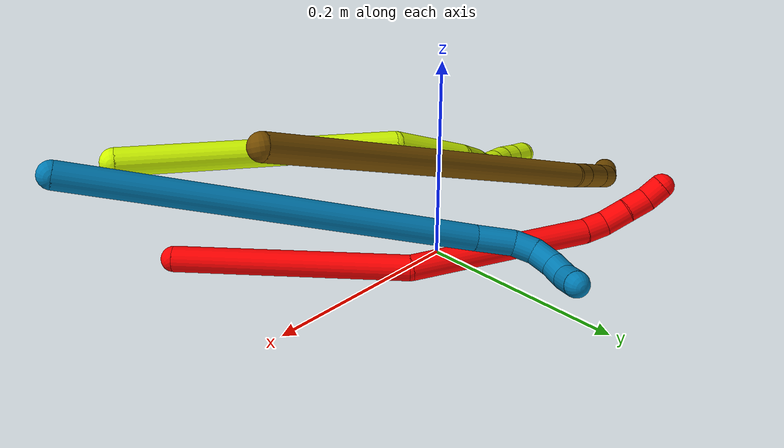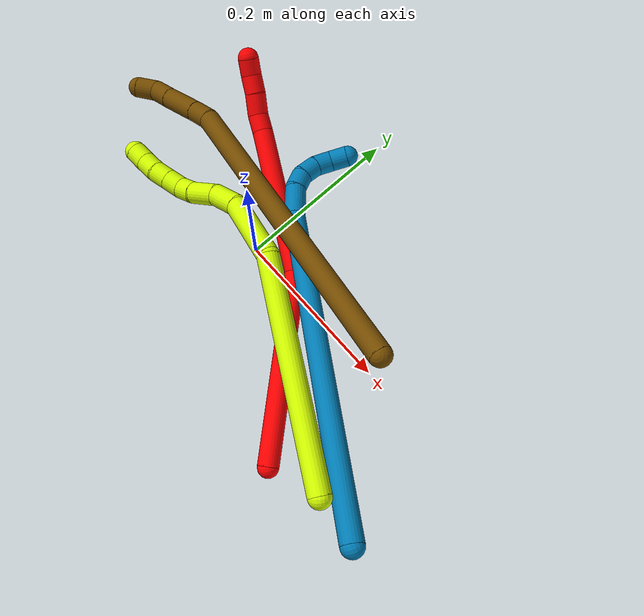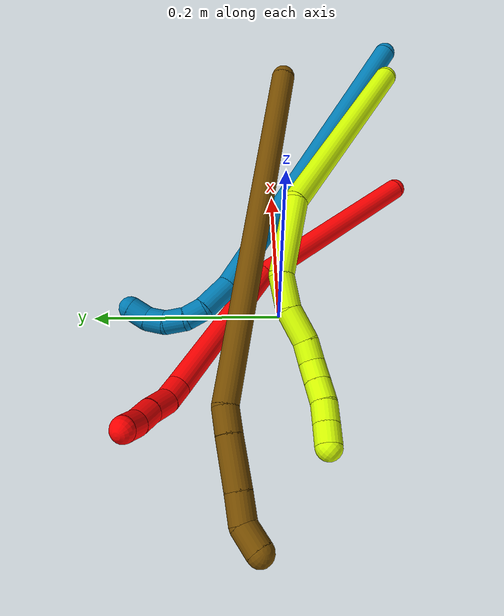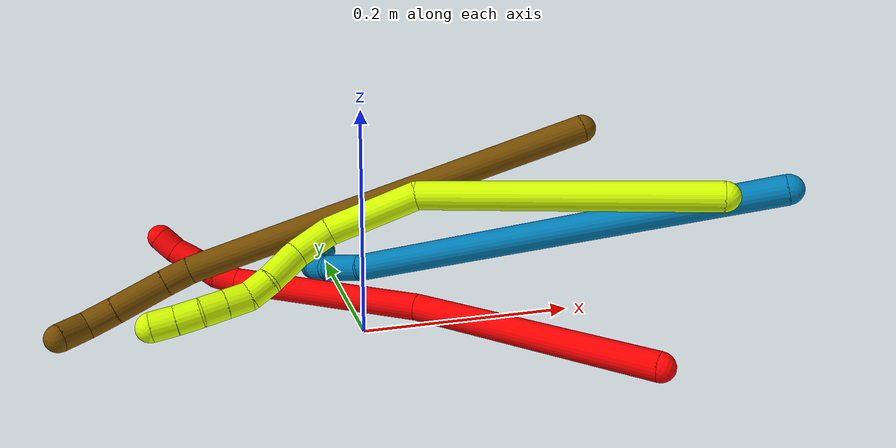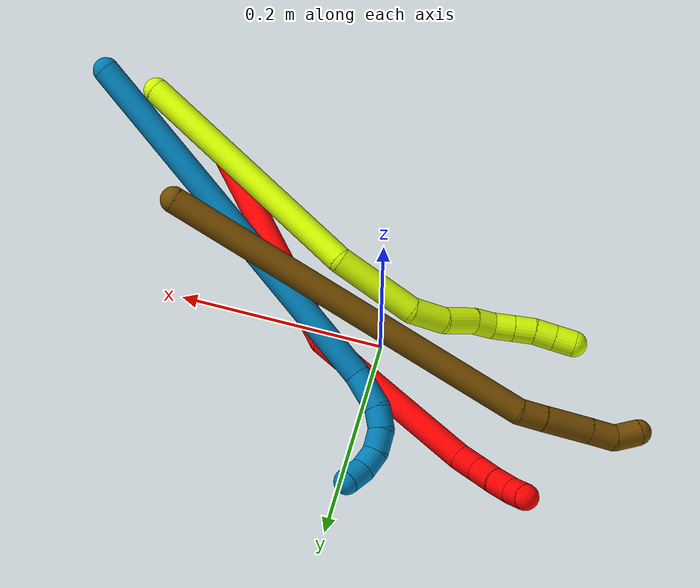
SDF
<sdf version="1.7">
 <world name="default">
  <model name="photoneo_s_sensor">
   <static>1</static>
   <pose>0 0 2 1.57079 1.57079 3.14159</pose>
   <link name="link">
    <inertial><mass>0.1</mass></inertial>
    <sensor name="sensor" type="depth">
     <update_rate>30</update_rate>
     <camera>
      <horizontal_fov>1.22</horizontal_fov>
      <image><width>1920</width><height>1200</height><format>B8G8R8</format></image>
      <clip><near>0.1</near><far>4</far></clip>
      <depth_camera><output>points</output></depth_camera>
     </camera>
     <plugin name="camera_plugin" filename="libgazebo_ros_depth_camera.so">
      <baseline>0.2</baseline>
      <alwaysOn>1</alwaysOn>
      <updateRate>0.0</updateRate>
      <cameraName>camera_ir</cameraName>
      <imageTopicName>/camera/color/image_raw</imageTopicName>
      <cameraInfoTopicName>/camera/color/camera_info</cameraInfoTopicName>
      <depthImageTopicName>/camera/depth/image_raw</depthImageTopicName>
      <depthImageCameraInfoTopicName>/camera/depth/camera_info</depthImageCameraInfoTopicName>
      <pointCloudTopicName>/camera/depth/points</pointCloudTopicName>
      <frameName>fr_optical</frameName>
      <pointCloudCutoff>0.1</pointCloudCutoff>
      <pointCloudCutoffMax>2.0</pointCloudCutoffMax>
      <distortionK1>0</distortionK1>
      <distortionK2>0</distortionK2>
      <distortionK3>0</distortionK3>
      <distortionT1>0</distortionT1>
      <distortionT2>0</distortionT2>
      <CxPrime>0</CxPrime>
      <Cx>0</Cx>
      <Cy>0</Cy>
      <focalLength>0</focalLength>
      <hackBaseline>0</hackBaseline>
     </plugin>
    </sensor>
   </link>
  </model>
  <model name="bin">
   <static>1</static>
   <link name="bottom">
    <collision name="collision-bottom">
     <pose>0 0 -0.01 0 -0 0</pose>
     <geometry><box><size>0.8 0.6 0.02</size></box></geometry>
     <surface>
      <friction><ode><mu>100</mu><mu2>100</mu2></ode></friction>
      <contact><collide_bitmask>65535</collide_bitmask></contact>
     </surface>
    </collision>
   </link>
   <link name="west_wall">
    <collision name="collision-west_wall">
     <pose>-0.41 0 0.1 0 -0 0</pose>
     <geometry><box><size>0.02 0.6 0.2</size></box></geometry>
     <surface>
      <friction><ode><mu>100</mu><mu2>100</mu2></ode></friction>
      <contact><collide_bitmask>65535</collide_bitmask></contact>
     </surface>
    </collision>
   </link>
   <link name="east_wall">
    <collision name="collision-east_wall">
     <pose>0.41 0 0.1 0 -0 0</pose>
     <geometry><box><size>0.02 0.6 0.2</size></box></geometry>
     <surface>
      <friction><ode><mu>100</mu><mu2>100</mu2></ode></friction>
      <contact><collide_bitmask>65535</collide_bitmask></contact>
     </surface>
    </collision>
   </link>
   <link name="south_wall">
    <collision name="collision-south_wall">
     <pose>0 -0.31 0.1 0 -0 0</pose>
     <geometry><box><size>0.8 0.02 0.2</size></box></geometry>
     <surface>
      <friction><ode><mu>100</mu><mu2>100</mu2></ode></friction>
      <contact><collide_bitmask>65535</collide_bitmask></contact>
     </surface>
    </collision>
   </link>
   <link name="north_wall">
    <collision name="collision-north_wall">
     <pose>0 0.31 0.1 0 -0 0</pose>
     <geometry><box><size>0.8 0.02 0.2</size></box></geometry>
     <surface>
      <friction><ode><mu>100</mu><mu2>100</mu2></ode></friction>
      <contact><collide_bitmask>65535</collide_bitmask></contact>
     </surface>
    </collision>
   </link>
  </model>
  <model name="2">
   <static>0</static>
   <link name="2">
    <collision name="collision-cylinder-e_1_1_4">
     <pose>-0.035352 0.055876 0.092912 -0.541437 -0.315201 0.088153</pose>
     <geometry><cylinder><radius>0.0125</radius><length>0.228075</length></cylinder></geometry>
     <surface>
      <friction><ode><mu>1.16</mu><mu2>1.16</mu2><slip1>0</slip1><slip2>0</slip2></ode></friction>
      <contact><ode><kp>1e+06</kp><kd>1</kd><max_vel>0</max_vel><min_depth>0.001</min_depth></ode></contact>
     </surface>
    </collision>
    <visual name="visual-cylinder-e_1_1_4">
     <pose>-0.035352 0.055876 0.092912 -0.541437 -0.315201 0.088153</pose>
     <geometry><cylinder><radius>0.0125</radius><length>0.228075</length></cylinder></geometry>
     <material><ambient>1 0 0 1</ambient></material>
    </visual>
    <collision name="collision-cylinder-e_2_4_5">
     <pose>-0.102377 0.12525 0.269541 -0.15986 -0.357457 0.028939</pose>
     <geometry><cylinder><radius>0.0125</radius><length>0.18104</length></cylinder></geometry>
     <surface>
      <friction><ode><mu>1.16</mu><mu2>1.16</mu2><slip1>0</slip1><slip2>0</slip2></ode></friction>
      <contact><ode><kp>1e+06</kp><kd>1</kd><max_vel>0</max_vel><min_depth>0.001</min_depth></ode></contact>
     </surface>
    </collision>
    <visual name="visual-cylinder-e_2_4_5">
     <pose>-0.102377 0.12525 0.269541 -0.15986 -0.357457 0.028939</pose>
     <geometry><cylinder><radius>0.0125</radius><length>0.18104</length></cylinder></geometry>
     <material><ambient>1 0 0 1</ambient></material>
    </visual>
    <collision name="collision-cylinder-e_3_5_6">
     <pose>-0.136437 0.139541 0.363942 -0.074064 -0.219268 0.008156</pose>
     <geometry><cylinder><radius>0.0125</radius><length>0.021952</length></cylinder></geometry>
     <surface>
      <friction><ode><mu>1.16</mu><mu2>1.16</mu2><slip1>0</slip1><slip2>0</slip2></ode></friction>
      <contact><ode><kp>1e+06</kp><kd>1</kd><max_vel>0</max_vel><min_depth>0.001</min_depth></ode></contact>
     </surface>
    </collision>
    <visual name="visual-cylinder-e_3_5_6">
     <pose>-0.136437 0.139541 0.363942 -0.074064 -0.219268 0.008156</pose>
     <geometry><cylinder><radius>0.0125</radius><length>0.021952</length></cylinder></geometry>
     <material><ambient>1 0 0 1</ambient></material>
    </visual>
    <collision name="collision-cylinder-e_4_6_7">
     <pose>-0.137622 0.142164 0.387508 -0.141119 0.09213 -0.006516</pose>
     <geometry><cylinder><radius>0.0125</radius><length>0.026134</length></cylinder></geometry>
     <surface>
      <friction><ode><mu>1.16</mu><mu2>1.16</mu2><slip1>0</slip1><slip2>0</slip2></ode></friction>
      <contact><ode><kp>1e+06</kp><kd>1</kd><max_vel>0</max_vel><min_depth>0.001</min_depth></ode></contact>
     </surface>
    </collision>
    <visual name="visual-cylinder-e_4_6_7">
     <pose>-0.137622 0.142164 0.387508 -0.141119 0.09213 -0.006516</pose>
     <geometry><cylinder><radius>0.0125</radius><length>0.026134</length></cylinder></geometry>
     <material><ambient>1 0 0 1</ambient></material>
    </visual>
    <collision name="collision-cylinder-e_5_7_8">
     <pose>-0.13646 0.144799 0.41167 -0.07125 -0.00356 0.000127</pose>
     <geometry><cylinder><radius>0.0125</radius><length>0.022616</length></cylinder></geometry>
     <surface>
      <friction><ode><mu>1.16</mu><mu2>1.16</mu2><slip1>0</slip1><slip2>0</slip2></ode></friction>
      <contact><ode><kp>1e+06</kp><kd>1</kd><max_vel>0</max_vel><min_depth>0.001</min_depth></ode></contact>
     </surface>
    </collision>
    <visual name="visual-cylinder-e_5_7_8">
     <pose>-0.13646 0.144799 0.41167 -0.07125 -0.00356 0.000127</pose>
     <geometry><cylinder><radius>0.0125</radius><length>0.022616</length></cylinder></geometry>
     <material><ambient>1 0 0 1</ambient></material>
    </visual>
    <collision name="collision-cylinder-e_6_8_2">
     <pose>-0.134067 0.146078 0.432731 -0.048444 0.243562 -0.00593</pose>
     <geometry><cylinder><radius>0.0125</radius><length>0.020182</length></cylinder></geometry>
     <surface>
      <friction><ode><mu>1.16</mu><mu2>1.16</mu2><slip1>0</slip1><slip2>0</slip2></ode></friction>
      <contact><ode><kp>1e+06</kp><kd>1</kd><max_vel>0</max_vel><min_depth>0.001</min_depth></ode></contact>
     </surface>
    </collision>
    <visual name="visual-cylinder-e_6_8_2">
     <pose>-0.134067 0.146078 0.432731 -0.048444 0.243562 -0.00593</pose>
     <geometry><cylinder><radius>0.0125</radius><length>0.020182</length></cylinder></geometry>
     <material><ambient>1 0 0 1</ambient></material>
    </visual>
    <collision name="collision-sphere-2">
     <pose>-0.131633 0.146552 0.442513 0 -0 0</pose>
     <geometry><sphere><radius>0.0125</radius></sphere></geometry>
     <surface>
      <friction><ode><mu>1.16</mu><mu2>1.16</mu2><slip1>0</slip1><slip2>0</slip2></ode></friction>
      <contact><ode><kp>1e+06</kp><kd>1</kd><max_vel>0</max_vel><min_depth>0.001</min_depth></ode></contact>
     </surface>
    </collision>
    <visual name="visual-sphere-2">
     <pose>-0.131633 0.146552 0.442513 0 -0 0</pose>
     <geometry><sphere><radius>0.0125</radius></sphere></geometry>
     <material><ambient>1 0 0 1</ambient></material>
    </visual>
    <collision name="collision-sphere-4">
     <pose>-0.070705 0.111752 0.185824 0 -0 0</pose>
     <geometry><sphere><radius>0.0125</radius></sphere></geometry>
     <surface>
      <friction><ode><mu>1.16</mu><mu2>1.16</mu2><slip1>0</slip1><slip2>0</slip2></ode></friction>
      <contact><ode><kp>1e+06</kp><kd>1</kd><max_vel>0</max_vel><min_depth>0.001</min_depth></ode></contact>
     </surface>
    </collision>
    <visual name="visual-sphere-4">
     <pose>-0.070705 0.111752 0.185824 0 -0 0</pose>
     <geometry><sphere><radius>0.0125</radius></sphere></geometry>
     <material><ambient>1 0 0 1</ambient></material>
    </visual>
    <collision name="collision-sphere-1">
     <geometry><sphere><radius>0.0125</radius></sphere></geometry>
     <surface>
      <friction><ode><mu>1.16</mu><mu2>1.16</mu2><slip1>0</slip1><slip2>0</slip2></ode></friction>
      <contact><ode><kp>1e+06</kp><kd>1</kd><max_vel>0</max_vel><min_depth>0.001</min_depth></ode></contact>
     </surface>
    </collision>
    <visual name="visual-sphere-1">
     <geometry><sphere><radius>0.0125</radius></sphere></geometry>
     <material><ambient>1 0 0 1</ambient></material>
    </visual>
    <collision name="collision-sphere-8">
     <pose>-0.136501 0.145604 0.422949 0 -0 0</pose>
     <geometry><sphere><radius>0.0125</radius></sphere></geometry>
     <surface>
      <friction><ode><mu>1.16</mu><mu2>1.16</mu2><slip1>0</slip1><slip2>0</slip2></ode></friction>
      <contact><ode><kp>1e+06</kp><kd>1</kd><max_vel>0</max_vel><min_depth>0.001</min_depth></ode></contact>
     </surface>
    </collision>
    <visual name="visual-sphere-8">
     <pose>-0.136501 0.145604 0.422949 0 -0 0</pose>
     <geometry><sphere><radius>0.0125</radius></sphere></geometry>
     <material><ambient>1 0 0 1</ambient></material>
    </visual>
    <collision name="collision-sphere-5">
     <pose>-0.134049 0.138748 0.353258 0 -0 0</pose>
     <geometry><sphere><radius>0.0125</radius></sphere></geometry>
     <surface>
      <friction><ode><mu>1.16</mu><mu2>1.16</mu2><slip1>0</slip1><slip2>0</slip2></ode></friction>
      <contact><ode><kp>1e+06</kp><kd>1</kd><max_vel>0</max_vel><min_depth>0.001</min_depth></ode></contact>
     </surface>
    </collision>
    <visual name="visual-sphere-5">
     <pose>-0.134049 0.138748 0.353258 0 -0 0</pose>
     <geometry><sphere><radius>0.0125</radius></sphere></geometry>
     <material><ambient>1 0 0 1</ambient></material>
    </visual>
    <collision name="collision-sphere-6">
     <pose>-0.138824 0.140333 0.374626 0 -0 0</pose>
     <geometry><sphere><radius>0.0125</radius></sphere></geometry>
     <surface>
      <friction><ode><mu>1.16</mu><mu2>1.16</mu2><slip1>0</slip1><slip2>0</slip2></ode></friction>
      <contact><ode><kp>1e+06</kp><kd>1</kd><max_vel>0</max_vel><min_depth>0.001</min_depth></ode></contact>
     </surface>
    </collision>
    <visual name="visual-sphere-6">
     <pose>-0.138824 0.140333 0.374626 0 -0 0</pose>
     <geometry><sphere><radius>0.0125</radius></sphere></geometry>
     <material><ambient>1 0 0 1</ambient></material>
    </visual>
    <collision name="collision-sphere-7">
     <pose>-0.13642 0.143994 0.40039 0 -0 0</pose>
     <geometry><sphere><radius>0.0125</radius></sphere></geometry>
     <surface>
      <friction><ode><mu>1.16</mu><mu2>1.16</mu2><slip1>0</slip1><slip2>0</slip2></ode></friction>
      <contact><ode><kp>1e+06</kp><kd>1</kd><max_vel>0</max_vel><min_depth>0.001</min_depth></ode></contact>
     </surface>
    </collision>
    <visual name="visual-sphere-7">
     <pose>-0.13642 0.143994 0.40039 0 -0 0</pose>
     <geometry><sphere><radius>0.0125</radius></sphere></geometry>
     <material><ambient>1 0 0 1</ambient></material>
    </visual>
    <inertial>
     <pose>-0.077962 0.096841 0.212298 0 -0 0</pose>
     <mass>0.5</mass>
     <inertia>
      <ixx>0.001509</ixx>
      <ixy>0</ixy>
      <ixz>0</ixz>
      <iyy>0.001477</iyy>
      <iyz>0</iyz>
      <izz>-4.5e-05</izz>
     </inertia>
    </inertial>
   </link>
   <pose>0.203122 -0.157958 0.012211 -0.340158 -1.10175 -0.036153</pose>
  </model>
  <model name="9">
   <static>0</static>
   <link name="9">
    <collision name="collision-cylinder-e_1_1_4">
     <pose>-0.16604 0.08528 0.028031 -1.25322 -1.07517 0.814852</pose>
     <geometry><cylinder><radius>0.0125</radius><length>0.377506</length></cylinder></geometry>
     <surface>
      <friction><ode><mu>1.16</mu><mu2>1.16</mu2><slip1>0</slip1><slip2>0</slip2></ode></friction>
      <contact><ode><kp>1e+06</kp><kd>1</kd><max_vel>0</max_vel><min_depth>0.001</min_depth></ode></contact>
     </surface>
    </collision>
    <visual name="visual-cylinder-e_1_1_4">
     <pose>-0.16604 0.08528 0.028031 -1.25322 -1.07517 0.814852</pose>
     <geometry><cylinder><radius>0.0125</radius><length>0.377506</length></cylinder></geometry>
     <material><ambient>0 0.490196 0.709804 1</ambient></material>
    </visual>
    <collision name="collision-cylinder-e_2_4_5">
     <pose>-0.348293 0.177441 0.062442 -0.823299 -1.04613 0.493261</pose>
     <geometry><cylinder><radius>0.0125</radius><length>0.037466</length></cylinder></geometry>
     <surface>
      <friction><ode><mu>1.16</mu><mu2>1.16</mu2><slip1>0</slip1><slip2>0</slip2></ode></friction>
      <contact><ode><kp>1e+06</kp><kd>1</kd><max_vel>0</max_vel><min_depth>0.001</min_depth></ode></contact>
     </surface>
    </collision>
    <visual name="visual-cylinder-e_2_4_5">
     <pose>-0.348293 0.177441 0.062442 -0.823299 -1.04613 0.493261</pose>
     <geometry><cylinder><radius>0.0125</radius><length>0.037466</length></cylinder></geometry>
     <material><ambient>0 0.490196 0.709804 1</ambient></material>
    </visual>
    <collision name="collision-cylinder-e_3_5_6">
     <pose>-0.371329 0.189008 0.075273 -0.628001 -0.707754 0.238798</pose>
     <geometry><cylinder><radius>0.0125</radius><length>0.020989</length></cylinder></geometry>
     <surface>
      <friction><ode><mu>1.16</mu><mu2>1.16</mu2><slip1>0</slip1><slip2>0</slip2></ode></friction>
      <contact><ode><kp>1e+06</kp><kd>1</kd><max_vel>0</max_vel><min_depth>0.001</min_depth></ode></contact>
     </surface>
    </collision>
    <visual name="visual-cylinder-e_3_5_6">
     <pose>-0.371329 0.189008 0.075273 -0.628001 -0.707754 0.238798</pose>
     <geometry><cylinder><radius>0.0125</radius><length>0.020989</length></cylinder></geometry>
     <material><ambient>0 0.490196 0.709804 1</ambient></material>
    </visual>
    <collision name="collision-cylinder-e_4_6_7">
     <pose>-0.381345 0.198454 0.091089 -0.470435 -0.295114 0.071213</pose>
     <geometry><cylinder><radius>0.0125</radius><length>0.021957</length></cylinder></geometry>
     <surface>
      <friction><ode><mu>1.16</mu><mu2>1.16</mu2><slip1>0</slip1><slip2>0</slip2></ode></friction>
      <contact><ode><kp>1e+06</kp><kd>1</kd><max_vel>0</max_vel><min_depth>0.001</min_depth></ode></contact>
     </surface>
    </collision>
    <visual name="visual-cylinder-e_4_6_7">
     <pose>-0.381345 0.198454 0.091089 -0.470435 -0.295114 0.071213</pose>
     <geometry><cylinder><radius>0.0125</radius><length>0.021957</length></cylinder></geometry>
     <material><ambient>0 0.490196 0.709804 1</ambient></material>
    </visual>
    <collision name="collision-cylinder-e_5_7_8">
     <pose>-0.384425 0.205745 0.110434 -0.248223 0.011013 -0.001374</pose>
     <geometry><cylinder><radius>0.0125</radius><length>0.020597</length></cylinder></geometry>
     <surface>
      <friction><ode><mu>1.16</mu><mu2>1.16</mu2><slip1>0</slip1><slip2>0</slip2></ode></friction>
      <contact><ode><kp>1e+06</kp><kd>1</kd><max_vel>0</max_vel><min_depth>0.001</min_depth></ode></contact>
     </surface>
    </collision>
    <visual name="visual-cylinder-e_5_7_8">
     <pose>-0.384425 0.205745 0.110434 -0.248223 0.011013 -0.001374</pose>
     <geometry><cylinder><radius>0.0125</radius><length>0.020597</length></cylinder></geometry>
     <material><ambient>0 0.490196 0.709804 1</ambient></material>
    </visual>
    <collision name="collision-cylinder-e_6_8_2">
     <pose>-0.383145 0.206746 0.130985 0.143694 0.108732 0.007833</pose>
     <geometry><cylinder><radius>0.0125</radius><length>0.021486</length></cylinder></geometry>
     <surface>
      <friction><ode><mu>1.16</mu><mu2>1.16</mu2><slip1>0</slip1><slip2>0</slip2></ode></friction>
      <contact><ode><kp>1e+06</kp><kd>1</kd><max_vel>0</max_vel><min_depth>0.001</min_depth></ode></contact>
     </surface>
    </collision>
    <visual name="visual-cylinder-e_6_8_2">
     <pose>-0.383145 0.206746 0.130985 0.143694 0.108732 0.007833</pose>
     <geometry><cylinder><radius>0.0125</radius><length>0.021486</length></cylinder></geometry>
     <material><ambient>0 0.490196 0.709804 1</ambient></material>
    </visual>
    <collision name="collision-sphere-2">
     <pose>-0.38198 0.205217 0.141555 0 -0 0</pose>
     <geometry><sphere><radius>0.0125</radius></sphere></geometry>
     <surface>
      <friction><ode><mu>1.16</mu><mu2>1.16</mu2><slip1>0</slip1><slip2>0</slip2></ode></friction>
      <contact><ode><kp>1e+06</kp><kd>1</kd><max_vel>0</max_vel><min_depth>0.001</min_depth></ode></contact>
     </surface>
    </collision>
    <visual name="visual-sphere-2">
     <pose>-0.38198 0.205217 0.141555 0 -0 0</pose>
     <geometry><sphere><radius>0.0125</radius></sphere></geometry>
     <material><ambient>0 0.490196 0.709804 1</ambient></material>
    </visual>
    <collision name="collision-sphere-4">
     <pose>-0.33208 0.170559 0.056063 0 -0 0</pose>
     <geometry><sphere><radius>0.0125</radius></sphere></geometry>
     <surface>
      <friction><ode><mu>1.16</mu><mu2>1.16</mu2><slip1>0</slip1><slip2>0</slip2></ode></friction>
      <contact><ode><kp>1e+06</kp><kd>1</kd><max_vel>0</max_vel><min_depth>0.001</min_depth></ode></contact>
     </surface>
    </collision>
    <visual name="visual-sphere-4">
     <pose>-0.33208 0.170559 0.056063 0 -0 0</pose>
     <geometry><sphere><radius>0.0125</radius></sphere></geometry>
     <material><ambient>0 0.490196 0.709804 1</ambient></material>
    </visual>
    <collision name="collision-sphere-1">
     <geometry><sphere><radius>0.0125</radius></sphere></geometry>
     <surface>
      <friction><ode><mu>1.16</mu><mu2>1.16</mu2><slip1>0</slip1><slip2>0</slip2></ode></friction>
      <contact><ode><kp>1e+06</kp><kd>1</kd><max_vel>0</max_vel><min_depth>0.001</min_depth></ode></contact>
     </surface>
    </collision>
    <visual name="visual-sphere-1">
     <geometry><sphere><radius>0.0125</radius></sphere></geometry>
     <material><ambient>0 0.490196 0.709804 1</ambient></material>
    </visual>
    <collision name="collision-sphere-8">
     <pose>-0.384311 0.208275 0.120416 0 -0 0</pose>
     <geometry><sphere><radius>0.0125</radius></sphere></geometry>
     <surface>
      <friction><ode><mu>1.16</mu><mu2>1.16</mu2><slip1>0</slip1><slip2>0</slip2></ode></friction>
      <contact><ode><kp>1e+06</kp><kd>1</kd><max_vel>0</max_vel><min_depth>0.001</min_depth></ode></contact>
     </surface>
    </collision>
    <visual name="visual-sphere-8">
     <pose>-0.384311 0.208275 0.120416 0 -0 0</pose>
     <geometry><sphere><radius>0.0125</radius></sphere></geometry>
     <material><ambient>0 0.490196 0.709804 1</ambient></material>
    </visual>
    <collision name="collision-sphere-5">
     <pose>-0.364506 0.184323 0.068821 0 -0 0</pose>
     <geometry><sphere><radius>0.0125</radius></sphere></geometry>
     <surface>
      <friction><ode><mu>1.16</mu><mu2>1.16</mu2><slip1>0</slip1><slip2>0</slip2></ode></friction>
      <contact><ode><kp>1e+06</kp><kd>1</kd><max_vel>0</max_vel><min_depth>0.001</min_depth></ode></contact>
     </surface>
    </collision>
    <visual name="visual-sphere-5">
     <pose>-0.364506 0.184323 0.068821 0 -0 0</pose>
     <geometry><sphere><radius>0.0125</radius></sphere></geometry>
     <material><ambient>0 0.490196 0.709804 1</ambient></material>
    </visual>
    <collision name="collision-sphere-6">
     <pose>-0.378152 0.193693 0.081726 0 -0 0</pose>
     <geometry><sphere><radius>0.0125</radius></sphere></geometry>
     <surface>
      <friction><ode><mu>1.16</mu><mu2>1.16</mu2><slip1>0</slip1><slip2>0</slip2></ode></friction>
      <contact><ode><kp>1e+06</kp><kd>1</kd><max_vel>0</max_vel><min_depth>0.001</min_depth></ode></contact>
     </surface>
    </collision>
    <visual name="visual-sphere-6">
     <pose>-0.378152 0.193693 0.081726 0 -0 0</pose>
     <geometry><sphere><radius>0.0125</radius></sphere></geometry>
     <material><ambient>0 0.490196 0.709804 1</ambient></material>
    </visual>
    <collision name="collision-sphere-7">
     <pose>-0.384538 0.203215 0.100452 0 -0 0</pose>
     <geometry><sphere><radius>0.0125</radius></sphere></geometry>
     <surface>
      <friction><ode><mu>1.16</mu><mu2>1.16</mu2><slip1>0</slip1><slip2>0</slip2></ode></friction>
      <contact><ode><kp>1e+06</kp><kd>1</kd><max_vel>0</max_vel><min_depth>0.001</min_depth></ode></contact>
     </surface>
    </collision>
    <visual name="visual-sphere-7">
     <pose>-0.384538 0.203215 0.100452 0 -0 0</pose>
     <geometry><sphere><radius>0.0125</radius></sphere></geometry>
     <material><ambient>0 0.490196 0.709804 1</ambient></material>
    </visual>
    <inertial>
     <pose>-0.216094 0.111692 0.04318 0 -0 0</pose>
     <mass>0.5</mass>
     <inertia>
      <ixx>0.003004</ixx>
      <ixy>0</ixy>
      <ixz>0</ixz>
      <iyy>0.005284</iyy>
      <iyz>0</iyz>
      <izz>0.001938</izz>
     </inertia>
    </inertial>
   </link>
   <pose>0.312956 -0.144155 0.144789 -1.43037 0.168401 -0.357501</pose>
  </model>
  <model name="12">
   <static>0</static>
   <link name="12">
    <collision name="collision-cylinder-e_1_1_4">
     <pose>-0.178487 0.044275 -0.038172 -2.28231 -1.25429 2.01407</pose>
     <geometry><cylinder><radius>0.0125</radius><length>0.375633</length></cylinder></geometry>
     <surface>
      <friction><ode><mu>1.16</mu><mu2>1.16</mu2><slip1>0</slip1><slip2>0</slip2></ode></friction>
      <contact><ode><kp>1e+06</kp><kd>1</kd><max_vel>0</max_vel><min_depth>0.001</min_depth></ode></contact>
     </surface>
    </collision>
    <visual name="visual-cylinder-e_1_1_4">
     <pose>-0.178487 0.044275 -0.038172 -2.28231 -1.25429 2.01407</pose>
     <geometry><cylinder><radius>0.0125</radius><length>0.375633</length></cylinder></geometry>
     <material><ambient>0.466667 0.301961 0 1</ambient></material>
    </visual>
    <collision name="collision-cylinder-e_2_4_5">
     <pose>-0.36941 0.08783 -0.077683 2.64842 -1.44918 -2.58753</pose>
     <geometry><cylinder><radius>0.0125</radius><length>0.025056</length></cylinder></geometry>
     <surface>
      <friction><ode><mu>1.16</mu><mu2>1.16</mu2><slip1>0</slip1><slip2>0</slip2></ode></friction>
      <contact><ode><kp>1e+06</kp><kd>1</kd><max_vel>0</max_vel><min_depth>0.001</min_depth></ode></contact>
     </surface>
    </collision>
    <visual name="visual-cylinder-e_2_4_5">
     <pose>-0.36941 0.08783 -0.077683 2.64842 -1.44918 -2.58753</pose>
     <geometry><cylinder><radius>0.0125</radius><length>0.025056</length></cylinder></geometry>
     <material><ambient>0.466667 0.301961 0 1</ambient></material>
    </visual>
    <collision name="collision-cylinder-e_3_5_6">
     <pose>-0.405326 0.084912 -0.081819 2.47548 -1.42042 -2.3766</pose>
     <geometry><cylinder><radius>0.0125</radius><length>0.047496</length></cylinder></geometry>
     <surface>
      <friction><ode><mu>1.16</mu><mu2>1.16</mu2><slip1>0</slip1><slip2>0</slip2></ode></friction>
      <contact><ode><kp>1e+06</kp><kd>1</kd><max_vel>0</max_vel><min_depth>0.001</min_depth></ode></contact>
     </surface>
    </collision>
    <visual name="visual-cylinder-e_3_5_6">
     <pose>-0.405326 0.084912 -0.081819 2.47548 -1.42042 -2.3766</pose>
     <geometry><cylinder><radius>0.0125</radius><length>0.047496</length></cylinder></geometry>
     <material><ambient>0.466667 0.301961 0 1</ambient></material>
    </visual>
    <collision name="collision-cylinder-e_4_6_7">
     <pose>-0.442084 0.081812 -0.086161 2.61366 -1.43689 -2.54198</pose>
     <geometry><cylinder><radius>0.0125</radius><length>0.026796</length></cylinder></geometry>
     <surface>
      <friction><ode><mu>1.16</mu><mu2>1.16</mu2><slip1>0</slip1><slip2>0</slip2></ode></friction>
      <contact><ode><kp>1e+06</kp><kd>1</kd><max_vel>0</max_vel><min_depth>0.001</min_depth></ode></contact>
     </surface>
    </collision>
    <visual name="visual-cylinder-e_4_6_7">
     <pose>-0.442084 0.081812 -0.086161 2.61366 -1.43689 -2.54198</pose>
     <geometry><cylinder><radius>0.0125</radius><length>0.026796</length></cylinder></geometry>
     <material><ambient>0.466667 0.301961 0 1</ambient></material>
    </visual>
    <collision name="collision-cylinder-e_5_7_2">
     <pose>-0.466674 0.076545 -0.08463 0.957 -1.12964 -0.635143</pose>
     <geometry><cylinder><radius>0.0125</radius><length>0.025019</length></cylinder></geometry>
     <surface>
      <friction><ode><mu>1.16</mu><mu2>1.16</mu2><slip1>0</slip1><slip2>0</slip2></ode></friction>
      <contact><ode><kp>1e+06</kp><kd>1</kd><max_vel>0</max_vel><min_depth>0.001</min_depth></ode></contact>
     </surface>
    </collision>
    <visual name="visual-cylinder-e_5_7_2">
     <pose>-0.466674 0.076545 -0.08463 0.957 -1.12964 -0.635143</pose>
     <geometry><cylinder><radius>0.0125</radius><length>0.025019</length></cylinder></geometry>
     <material><ambient>0.466667 0.301961 0 1</ambient></material>
    </visual>
    <collision name="collision-sphere-2">
     <pose>-0.477985 0.072179 -0.081553 0 -0 0</pose>
     <geometry><sphere><radius>0.0125</radius></sphere></geometry>
     <surface>
      <friction><ode><mu>1.16</mu><mu2>1.16</mu2><slip1>0</slip1><slip2>0</slip2></ode></friction>
      <contact><ode><kp>1e+06</kp><kd>1</kd><max_vel>0</max_vel><min_depth>0.001</min_depth></ode></contact>
     </surface>
    </collision>
    <visual name="visual-sphere-2">
     <pose>-0.477985 0.072179 -0.081553 0 -0 0</pose>
     <geometry><sphere><radius>0.0125</radius></sphere></geometry>
     <material><ambient>0.466667 0.301961 0 1</ambient></material>
    </visual>
    <collision name="collision-sphere-7">
     <pose>-0.455362 0.080911 -0.087706 0 -0 0</pose>
     <geometry><sphere><radius>0.0125</radius></sphere></geometry>
     <surface>
      <friction><ode><mu>1.16</mu><mu2>1.16</mu2><slip1>0</slip1><slip2>0</slip2></ode></friction>
      <contact><ode><kp>1e+06</kp><kd>1</kd><max_vel>0</max_vel><min_depth>0.001</min_depth></ode></contact>
     </surface>
    </collision>
    <visual name="visual-sphere-7">
     <pose>-0.455362 0.080911 -0.087706 0 -0 0</pose>
     <geometry><sphere><radius>0.0125</radius></sphere></geometry>
     <material><ambient>0.466667 0.301961 0 1</ambient></material>
    </visual>
    <collision name="collision-sphere-6">
     <pose>-0.428806 0.082713 -0.084616 0 -0 0</pose>
     <geometry><sphere><radius>0.0125</radius></sphere></geometry>
     <surface>
      <friction><ode><mu>1.16</mu><mu2>1.16</mu2><slip1>0</slip1><slip2>0</slip2></ode></friction>
      <contact><ode><kp>1e+06</kp><kd>1</kd><max_vel>0</max_vel><min_depth>0.001</min_depth></ode></contact>
     </surface>
    </collision>
    <visual name="visual-sphere-6">
     <pose>-0.428806 0.082713 -0.084616 0 -0 0</pose>
     <geometry><sphere><radius>0.0125</radius></sphere></geometry>
     <material><ambient>0.466667 0.301961 0 1</ambient></material>
    </visual>
    <collision name="collision-sphere-5">
     <pose>-0.381845 0.08711 -0.079021 0 -0 0</pose>
     <geometry><sphere><radius>0.0125</radius></sphere></geometry>
     <surface>
      <friction><ode><mu>1.16</mu><mu2>1.16</mu2><slip1>0</slip1><slip2>0</slip2></ode></friction>
      <contact><ode><kp>1e+06</kp><kd>1</kd><max_vel>0</max_vel><min_depth>0.001</min_depth></ode></contact>
     </surface>
    </collision>
    <visual name="visual-sphere-5">
     <pose>-0.381845 0.08711 -0.079021 0 -0 0</pose>
     <geometry><sphere><radius>0.0125</radius></sphere></geometry>
     <material><ambient>0.466667 0.301961 0 1</ambient></material>
    </visual>
    <collision name="collision-sphere-1">
     <geometry><sphere><radius>0.0125</radius></sphere></geometry>
     <surface>
      <friction><ode><mu>1.16</mu><mu2>1.16</mu2><slip1>0</slip1><slip2>0</slip2></ode></friction>
      <contact><ode><kp>1e+06</kp><kd>1</kd><max_vel>0</max_vel><min_depth>0.001</min_depth></ode></contact>
     </surface>
    </collision>
    <visual name="visual-sphere-1">
     <geometry><sphere><radius>0.0125</radius></sphere></geometry>
     <material><ambient>0.466667 0.301961 0 1</ambient></material>
    </visual>
    <collision name="collision-sphere-4">
     <pose>-0.356975 0.088549 -0.076344 0 -0 0</pose>
     <geometry><sphere><radius>0.0125</radius></sphere></geometry>
     <surface>
      <friction><ode><mu>1.16</mu><mu2>1.16</mu2><slip1>0</slip1><slip2>0</slip2></ode></friction>
      <contact><ode><kp>1e+06</kp><kd>1</kd><max_vel>0</max_vel><min_depth>0.001</min_depth></ode></contact>
     </surface>
    </collision>
    <visual name="visual-sphere-4">
     <pose>-0.356975 0.088549 -0.076344 0 -0 0</pose>
     <geometry><sphere><radius>0.0125</radius></sphere></geometry>
     <material><ambient>0.466667 0.301961 0 1</ambient></material>
    </visual>
    <inertial>
     <pose>-0.238149 0.053944 -0.049194 0 -0 0</pose>
     <mass>0.5</mass>
     <inertia><ixx>0.000614</ixx><ixy>0</ixy><ixz>0</ixz><iyy>0.00539</iyy><iyz>0</iyz><izz>0.00318</izz></inertia>
    </inertial>
   </link>
   <pose>0.201307 -0.00864 0.176747 0.404109 -0.252449 0.135927</pose>
  </model>
  <model name="15">
   <static>0</static>
   <link name="15">
    <collision name="collision-cylinder-e_1_1_4">
     <pose>-0.120552 0.012722 0.026354 -0.44974 -1.33265 0.355905</pose>
     <geometry><cylinder><radius>0.0125</radius><length>0.248105</length></cylinder></geometry>
     <surface>
      <friction><ode><mu>1.16</mu><mu2>1.16</mu2><slip1>0</slip1><slip2>0</slip2></ode></friction>
      <contact><ode><kp>1e+06</kp><kd>1</kd><max_vel>0</max_vel><min_depth>0.001</min_depth></ode></contact>
     </surface>
    </collision>
    <visual name="visual-cylinder-e_1_1_4">
     <pose>-0.120552 0.012722 0.026354 -0.44974 -1.33265 0.355905</pose>
     <geometry><cylinder><radius>0.0125</radius><length>0.248105</length></cylinder></geometry>
     <material><ambient>0.835294 1 0 1</ambient></material>
    </visual>
    <collision name="collision-cylinder-e_2_4_5">
     <pose>-0.275227 0.019057 0.074548 0.284505 -0.982682 -0.152978</pose>
     <geometry><cylinder><radius>0.0125</radius><length>0.08203</length></cylinder></geometry>
     <surface>
      <friction><ode><mu>1.16</mu><mu2>1.16</mu2><slip1>0</slip1><slip2>0</slip2></ode></friction>
      <contact><ode><kp>1e+06</kp><kd>1</kd><max_vel>0</max_vel><min_depth>0.001</min_depth></ode></contact>
     </surface>
    </collision>
    <visual name="visual-cylinder-e_2_4_5">
     <pose>-0.275227 0.019057 0.074548 0.284505 -0.982682 -0.152978</pose>
     <geometry><cylinder><radius>0.0125</radius><length>0.08203</length></cylinder></geometry>
     <material><ambient>0.835294 1 0 1</ambient></material>
    </visual>
    <collision name="collision-cylinder-e_3_5_6">
     <pose>-0.318976 0.009318 0.110404 0.23478 -0.588826 -0.07149</pose>
     <geometry><cylinder><radius>0.0125</radius><length>0.034659</length></cylinder></geometry>
     <surface>
      <friction><ode><mu>1.16</mu><mu2>1.16</mu2><slip1>0</slip1><slip2>0</slip2></ode></friction>
      <contact><ode><kp>1e+06</kp><kd>1</kd><max_vel>0</max_vel><min_depth>0.001</min_depth></ode></contact>
     </surface>
    </collision>
    <visual name="visual-cylinder-e_3_5_6">
     <pose>-0.318976 0.009318 0.110404 0.23478 -0.588826 -0.07149</pose>
     <geometry><cylinder><radius>0.0125</radius><length>0.034659</length></cylinder></geometry>
     <material><ambient>0.835294 1 0 1</ambient></material>
    </visual>
    <collision name="collision-cylinder-e_4_6_7">
     <pose>-0.333358 0.002825 0.140131 0.197259 -0.28865 -0.02876</pose>
     <geometry><cylinder><radius>0.0125</radius><length>0.033427</length></cylinder></geometry>
     <surface>
      <friction><ode><mu>1.16</mu><mu2>1.16</mu2><slip1>0</slip1><slip2>0</slip2></ode></friction>
      <contact><ode><kp>1e+06</kp><kd>1</kd><max_vel>0</max_vel><min_depth>0.001</min_depth></ode></contact>
     </surface>
    </collision>
    <visual name="visual-cylinder-e_4_6_7">
     <pose>-0.333358 0.002825 0.140131 0.197259 -0.28865 -0.02876</pose>
     <geometry><cylinder><radius>0.0125</radius><length>0.033427</length></cylinder></geometry>
     <material><ambient>0.835294 1 0 1</ambient></material>
    </visual>
    <collision name="collision-cylinder-e_5_7_8">
     <pose>-0.343267 -0.002493 0.1647 0.241101 -0.514048 -0.063658</pose>
     <geometry><cylinder><radius>0.0125</radius><length>0.020952</length></cylinder></geometry>
     <surface>
      <friction><ode><mu>1.16</mu><mu2>1.16</mu2><slip1>0</slip1><slip2>0</slip2></ode></friction>
      <contact><ode><kp>1e+06</kp><kd>1</kd><max_vel>0</max_vel><min_depth>0.001</min_depth></ode></contact>
     </surface>
    </collision>
    <visual name="visual-cylinder-e_5_7_8">
     <pose>-0.343267 -0.002493 0.1647 0.241101 -0.514048 -0.063658</pose>
     <geometry><cylinder><radius>0.0125</radius><length>0.020952</length></cylinder></geometry>
     <material><ambient>0.835294 1 0 1</ambient></material>
    </visual>
    <collision name="collision-cylinder-e_6_8_9">
     <pose>-0.354297 -0.003395 0.181812 -0.153357 -0.61336 0.048649</pose>
     <geometry><cylinder><radius>0.0125</radius><length>0.020427</length></cylinder></geometry>
     <surface>
      <friction><ode><mu>1.16</mu><mu2>1.16</mu2><slip1>0</slip1><slip2>0</slip2></ode></friction>
      <contact><ode><kp>1e+06</kp><kd>1</kd><max_vel>0</max_vel><min_depth>0.001</min_depth></ode></contact>
     </surface>
    </collision>
    <visual name="visual-cylinder-e_6_8_9">
     <pose>-0.354297 -0.003395 0.181812 -0.153357 -0.61336 0.048649</pose>
     <geometry><cylinder><radius>0.0125</radius><length>0.020427</length></cylinder></geometry>
     <material><ambient>0.835294 1 0 1</ambient></material>
    </visual>
    <collision name="collision-cylinder-e_7_9_10">
     <pose>-0.366039 -0.000829 0.198229 -0.15673 -0.616973 0.050036</pose>
     <geometry><cylinder><radius>0.0125</radius><length>0.020266</length></cylinder></geometry>
     <surface>
      <friction><ode><mu>1.16</mu><mu2>1.16</mu2><slip1>0</slip1><slip2>0</slip2></ode></friction>
      <contact><ode><kp>1e+06</kp><kd>1</kd><max_vel>0</max_vel><min_depth>0.001</min_depth></ode></contact>
     </surface>
    </collision>
    <visual name="visual-cylinder-e_7_9_10">
     <pose>-0.366039 -0.000829 0.198229 -0.15673 -0.616973 0.050036</pose>
     <geometry><cylinder><radius>0.0125</radius><length>0.020266</length></cylinder></geometry>
     <material><ambient>0.835294 1 0 1</ambient></material>
    </visual>
    <collision name="collision-cylinder-e_8_10_11">
     <pose>-0.378979 0.00105 0.213495 -0.08274 -0.781939 0.034121</pose>
     <geometry><cylinder><radius>0.0125</radius><length>0.020089</length></cylinder></geometry>
     <surface>
      <friction><ode><mu>1.16</mu><mu2>1.16</mu2><slip1>0</slip1><slip2>0</slip2></ode></friction>
      <contact><ode><kp>1e+06</kp><kd>1</kd><max_vel>0</max_vel><min_depth>0.001</min_depth></ode></contact>
     </surface>
    </collision>
    <visual name="visual-cylinder-e_8_10_11">
     <pose>-0.378979 0.00105 0.213495 -0.08274 -0.781939 0.034121</pose>
     <geometry><cylinder><radius>0.0125</radius><length>0.020089</length></cylinder></geometry>
     <material><ambient>0.835294 1 0 1</ambient></material>
    </visual>
    <collision name="collision-cylinder-e_9_11_2">
     <pose>-0.393254 0.002615 0.227504 -0.140378 -0.801102 0.059522</pose>
     <geometry><cylinder><radius>0.0125</radius><length>0.020046</length></cylinder></geometry>
     <surface>
      <friction><ode><mu>1.16</mu><mu2>1.16</mu2><slip1>0</slip1><slip2>0</slip2></ode></friction>
      <contact><ode><kp>1e+06</kp><kd>1</kd><max_vel>0</max_vel><min_depth>0.001</min_depth></ode></contact>
     </surface>
    </collision>
    <visual name="visual-cylinder-e_9_11_2">
     <pose>-0.393254 0.002615 0.227504 -0.140378 -0.801102 0.059522</pose>
     <geometry><cylinder><radius>0.0125</radius><length>0.020046</length></cylinder></geometry>
     <material><ambient>0.835294 1 0 1</ambient></material>
    </visual>
    <collision name="collision-sphere-2">
     <pose>-0.400452 0.00359 0.234411 0 -0 0</pose>
     <geometry><sphere><radius>0.0125</radius></sphere></geometry>
     <surface>
      <friction><ode><mu>1.16</mu><mu2>1.16</mu2><slip1>0</slip1><slip2>0</slip2></ode></friction>
      <contact><ode><kp>1e+06</kp><kd>1</kd><max_vel>0</max_vel><min_depth>0.001</min_depth></ode></contact>
     </surface>
    </collision>
    <visual name="visual-sphere-2">
     <pose>-0.400452 0.00359 0.234411 0 -0 0</pose>
     <geometry><sphere><radius>0.0125</radius></sphere></geometry>
     <material><ambient>0.835294 1 0 1</ambient></material>
    </visual>
    <collision name="collision-sphere-11">
     <pose>-0.386057 0.001639 0.220598 0 -0 0</pose>
     <geometry><sphere><radius>0.0125</radius></sphere></geometry>
     <surface>
      <friction><ode><mu>1.16</mu><mu2>1.16</mu2><slip1>0</slip1><slip2>0</slip2></ode></friction>
      <contact><ode><kp>1e+06</kp><kd>1</kd><max_vel>0</max_vel><min_depth>0.001</min_depth></ode></contact>
     </surface>
    </collision>
    <visual name="visual-sphere-11">
     <pose>-0.386057 0.001639 0.220598 0 -0 0</pose>
     <geometry><sphere><radius>0.0125</radius></sphere></geometry>
     <material><ambient>0.835294 1 0 1</ambient></material>
    </visual>
    <collision name="collision-sphere-10">
     <pose>-0.371901 0.000461 0.206393 0 -0 0</pose>
     <geometry><sphere><radius>0.0125</radius></sphere></geometry>
     <surface>
      <friction><ode><mu>1.16</mu><mu2>1.16</mu2><slip1>0</slip1><slip2>0</slip2></ode></friction>
      <contact><ode><kp>1e+06</kp><kd>1</kd><max_vel>0</max_vel><min_depth>0.001</min_depth></ode></contact>
     </surface>
    </collision>
    <visual name="visual-sphere-10">
     <pose>-0.371901 0.000461 0.206393 0 -0 0</pose>
     <geometry><sphere><radius>0.0125</radius></sphere></geometry>
     <material><ambient>0.835294 1 0 1</ambient></material>
    </visual>
    <collision name="collision-sphere-9">
     <pose>-0.360176 -0.002119 0.190066 0 -0 0</pose>
     <geometry><sphere><radius>0.0125</radius></sphere></geometry>
     <surface>
      <friction><ode><mu>1.16</mu><mu2>1.16</mu2><slip1>0</slip1><slip2>0</slip2></ode></friction>
      <contact><ode><kp>1e+06</kp><kd>1</kd><max_vel>0</max_vel><min_depth>0.001</min_depth></ode></contact>
     </surface>
    </collision>
    <visual name="visual-sphere-9">
     <pose>-0.360176 -0.002119 0.190066 0 -0 0</pose>
     <geometry><sphere><radius>0.0125</radius></sphere></geometry>
     <material><ambient>0.835294 1 0 1</ambient></material>
    </visual>
    <collision name="collision-sphere-4">
     <pose>-0.241103 0.025444 0.052708 0 -0 0</pose>
     <geometry><sphere><radius>0.0125</radius></sphere></geometry>
     <surface>
      <friction><ode><mu>1.16</mu><mu2>1.16</mu2><slip1>0</slip1><slip2>0</slip2></ode></friction>
      <contact><ode><kp>1e+06</kp><kd>1</kd><max_vel>0</max_vel><min_depth>0.001</min_depth></ode></contact>
     </surface>
    </collision>
    <visual name="visual-sphere-4">
     <pose>-0.241103 0.025444 0.052708 0 -0 0</pose>
     <geometry><sphere><radius>0.0125</radius></sphere></geometry>
     <material><ambient>0.835294 1 0 1</ambient></material>
    </visual>
    <collision name="collision-sphere-1">
     <geometry><sphere><radius>0.0125</radius></sphere></geometry>
     <surface>
      <friction><ode><mu>1.16</mu><mu2>1.16</mu2><slip1>0</slip1><slip2>0</slip2></ode></friction>
      <contact><ode><kp>1e+06</kp><kd>1</kd><max_vel>0</max_vel><min_depth>0.001</min_depth></ode></contact>
     </surface>
    </collision>
    <visual name="visual-sphere-1">
     <geometry><sphere><radius>0.0125</radius></sphere></geometry>
     <material><ambient>0.835294 1 0 1</ambient></material>
    </visual>
    <collision name="collision-sphere-8">
     <pose>-0.348418 -0.004671 0.173559 0 -0 0</pose>
     <geometry><sphere><radius>0.0125</radius></sphere></geometry>
     <surface>
      <friction><ode><mu>1.16</mu><mu2>1.16</mu2><slip1>0</slip1><slip2>0</slip2></ode></friction>
      <contact><ode><kp>1e+06</kp><kd>1</kd><max_vel>0</max_vel><min_depth>0.001</min_depth></ode></contact>
     </surface>
    </collision>
    <visual name="visual-sphere-8">
     <pose>-0.348418 -0.004671 0.173559 0 -0 0</pose>
     <geometry><sphere><radius>0.0125</radius></sphere></geometry>
     <material><ambient>0.835294 1 0 1</ambient></material>
    </visual>
    <collision name="collision-sphere-5">
     <pose>-0.309352 0.01267 0.096388 0 -0 0</pose>
     <geometry><sphere><radius>0.0125</radius></sphere></geometry>
     <surface>
      <friction><ode><mu>1.16</mu><mu2>1.16</mu2><slip1>0</slip1><slip2>0</slip2></ode></friction>
      <contact><ode><kp>1e+06</kp><kd>1</kd><max_vel>0</max_vel><min_depth>0.001</min_depth></ode></contact>
     </surface>
    </collision>
    <visual name="visual-sphere-5">
     <pose>-0.309352 0.01267 0.096388 0 -0 0</pose>
     <geometry><sphere><radius>0.0125</radius></sphere></geometry>
     <material><ambient>0.835294 1 0 1</ambient></material>
    </visual>
    <collision name="collision-sphere-6">
     <pose>-0.3286 0.005965 0.12442 0 -0 0</pose>
     <geometry><sphere><radius>0.0125</radius></sphere></geometry>
     <surface>
      <friction><ode><mu>1.16</mu><mu2>1.16</mu2><slip1>0</slip1><slip2>0</slip2></ode></friction>
      <contact><ode><kp>1e+06</kp><kd>1</kd><max_vel>0</max_vel><min_depth>0.001</min_depth></ode></contact>
     </surface>
    </collision>
    <visual name="visual-sphere-6">
     <pose>-0.3286 0.005965 0.12442 0 -0 0</pose>
     <geometry><sphere><radius>0.0125</radius></sphere></geometry>
     <material><ambient>0.835294 1 0 1</ambient></material>
    </visual>
    <collision name="collision-sphere-7">
     <pose>-0.338116 -0.000315 0.155842 0 -0 0</pose>
     <geometry><sphere><radius>0.0125</radius></sphere></geometry>
     <surface>
      <friction><ode><mu>1.16</mu><mu2>1.16</mu2><slip1>0</slip1><slip2>0</slip2></ode></friction>
      <contact><ode><kp>1e+06</kp><kd>1</kd><max_vel>0</max_vel><min_depth>0.001</min_depth></ode></contact>
     </surface>
    </collision>
    <visual name="visual-sphere-7">
     <pose>-0.338116 -0.000315 0.155842 0 -0 0</pose>
     <geometry><sphere><radius>0.0125</radius></sphere></geometry>
     <material><ambient>0.835294 1 0 1</ambient></material>
    </visual>
    <inertial>
     <pose>-0.224057 0.010144 0.082391 0 -0 0</pose>
     <mass>0.5</mass>
     <inertia>
      <ixx>0.000394</ixx>
      <ixy>0</ixy>
      <ixz>0</ixz>
      <iyy>0.001437</iyy>
      <iyz>0</iyz>
      <izz>0.001192</izz>
     </inertia>
    </inertial>
   </link>
   <pose>0.260408 -0.137459 0.14099 1.8663 -0.094686 -0.752712</pose>
  </model>
 </world>
</sdf>
